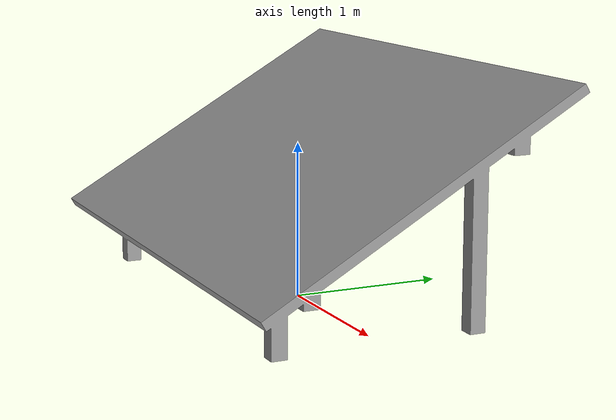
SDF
<?xml version="1.0" ?>
<sdf version="1.6">
  <model name="solar_panel">
    <static>true</static>
    <link name="link">
      <collision name="collision">
        <geometry>
          <mesh>
            <scale>1 1 1</scale>
            <uri>model://solar_panel/meshes/solar_panel.dae</uri>
          </mesh>
        </geometry>
      </collision>
      <visual name="visual">
        <geometry>
          <mesh>
            <scale>1 1 1</scale>
            <uri>model://solar_panel/meshes/solar_panel.dae</uri>
          </mesh>
        </geometry>
        <material>
          <script>
            <name>Gazebo/Grey</name>
          </script>
        </material>
      </visual>
    </link>
  </model>
</sdf>
